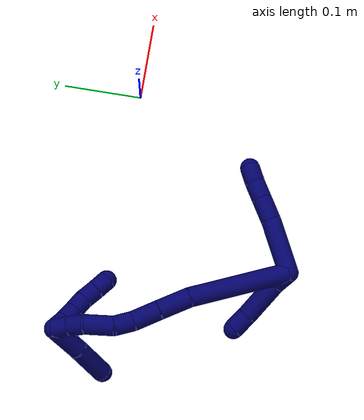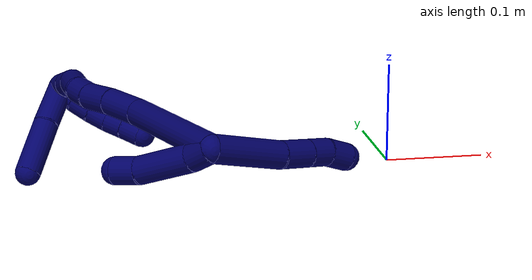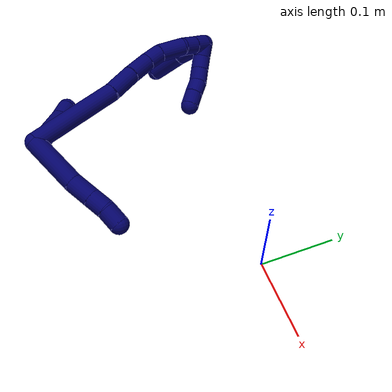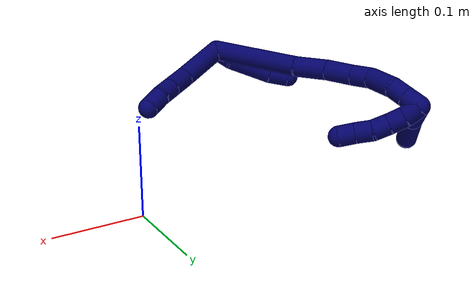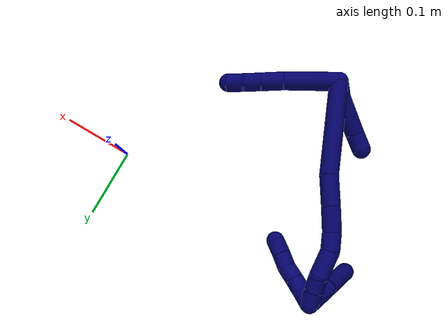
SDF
<sdf version="1.7">
 <world name="default">
  <model name="7">
   <static>0</static>
   <link name="7">
    <collision name="collision-cylinder-e_1_2_8">
     <pose>0.033415 0.007607 0.011159 -0.598351 1.1867 -0.410178</pose>
     <geometry><cylinder><radius>0.0125</radius><length>0.072082</length></cylinder></geometry>
     <surface>
      <friction><ode><mu>1.16</mu><mu2>1.16</mu2><slip1>0</slip1><slip2>0</slip2></ode></friction>
      <contact><ode><kp>1e+06</kp><kd>1</kd><max_vel>0</max_vel><min_depth>0.001</min_depth></ode></contact>
     </surface>
    </collision>
    <visual name="visual-cylinder-e_1_2_8">
     <pose>0.033415 0.007607 0.011159 -0.598351 1.1867 -0.410178</pose>
     <geometry><cylinder><radius>0.0125</radius><length>0.072082</length></cylinder></geometry>
     <material><ambient>0.003922 0 0.403922 1</ambient></material>
    </visual>
    <collision name="collision-cylinder-e_2_8_9">
     <pose>0.08112 0.01684 0.028307 -0.264938 1.16108 -0.174365</pose>
     <geometry><cylinder><radius>0.0125</radius><length>0.031157</length></cylinder></geometry>
     <surface>
      <friction><ode><mu>1.16</mu><mu2>1.16</mu2><slip1>0</slip1><slip2>0</slip2></ode></friction>
      <contact><ode><kp>1e+06</kp><kd>1</kd><max_vel>0</max_vel><min_depth>0.001</min_depth></ode></contact>
     </surface>
    </collision>
    <visual name="visual-cylinder-e_2_8_9">
     <pose>0.08112 0.01684 0.028307 -0.264938 1.16108 -0.174365</pose>
     <geometry><cylinder><radius>0.0125</radius><length>0.031157</length></cylinder></geometry>
     <material><ambient>0.003922 0 0.403922 1</ambient></material>
    </visual>
    <collision name="collision-cylinder-e_3_9_10">
     <pose>0.105939 0.019627 0.038757 -0.254984 1.1582 -0.167248</pose>
     <geometry><cylinder><radius>0.0125</radius><length>0.02299</length></cylinder></geometry>
     <surface>
      <friction><ode><mu>1.16</mu><mu2>1.16</mu2><slip1>0</slip1><slip2>0</slip2></ode></friction>
      <contact><ode><kp>1e+06</kp><kd>1</kd><max_vel>0</max_vel><min_depth>0.001</min_depth></ode></contact>
     </surface>
    </collision>
    <visual name="visual-cylinder-e_3_9_10">
     <pose>0.105939 0.019627 0.038757 -0.254984 1.1582 -0.167248</pose>
     <geometry><cylinder><radius>0.0125</radius><length>0.02299</length></cylinder></geometry>
     <material><ambient>0.003922 0 0.403922 1</ambient></material>
    </visual>
    <collision name="collision-cylinder-e_4_10_6">
     <pose>0.127131 0.024572 0.046862 -0.803951 1.11303 -0.517103</pose>
     <geometry><cylinder><radius>0.0125</radius><length>0.023771</length></cylinder></geometry>
     <surface>
      <friction><ode><mu>1.16</mu><mu2>1.16</mu2><slip1>0</slip1><slip2>0</slip2></ode></friction>
      <contact><ode><kp>1e+06</kp><kd>1</kd><max_vel>0</max_vel><min_depth>0.001</min_depth></ode></contact>
     </surface>
    </collision>
    <visual name="visual-cylinder-e_4_10_6">
     <pose>0.127131 0.024572 0.046862 -0.803951 1.11303 -0.517103</pose>
     <geometry><cylinder><radius>0.0125</radius><length>0.023771</length></cylinder></geometry>
     <material><ambient>0.003922 0 0.403922 1</ambient></material>
    </visual>
    <collision name="collision-cylinder-e_1_2_11">
     <pose>-0.005965 0.004788 0.008327 -0.521816 -0.555715 0.152019</pose>
     <geometry><cylinder><radius>0.0125</radius><length>0.022615</length></cylinder></geometry>
     <surface>
      <friction><ode><mu>1.16</mu><mu2>1.16</mu2><slip1>0</slip1><slip2>0</slip2></ode></friction>
      <contact><ode><kp>1e+06</kp><kd>1</kd><max_vel>0</max_vel><min_depth>0.001</min_depth></ode></contact>
     </surface>
    </collision>
    <visual name="visual-cylinder-e_1_2_11">
     <pose>-0.005965 0.004788 0.008327 -0.521816 -0.555715 0.152019</pose>
     <geometry><cylinder><radius>0.0125</radius><length>0.022615</length></cylinder></geometry>
     <material><ambient>0.003922 0 0.403922 1</ambient></material>
    </visual>
    <collision name="collision-cylinder-e_2_11_12">
     <pose>-0.030478 0.016758 0.034325 -0.386048 -0.771391 0.158392</pose>
     <geometry><cylinder><radius>0.0125</radius><length>0.05321</length></cylinder></geometry>
     <surface>
      <friction><ode><mu>1.16</mu><mu2>1.16</mu2><slip1>0</slip1><slip2>0</slip2></ode></friction>
      <contact><ode><kp>1e+06</kp><kd>1</kd><max_vel>0</max_vel><min_depth>0.001</min_depth></ode></contact>
     </surface>
    </collision>
    <visual name="visual-cylinder-e_2_11_12">
     <pose>-0.030478 0.016758 0.034325 -0.386048 -0.771391 0.158392</pose>
     <geometry><cylinder><radius>0.0125</radius><length>0.05321</length></cylinder></geometry>
     <material><ambient>0.003922 0 0.403922 1</ambient></material>
    </visual>
    <collision name="collision-cylinder-e_3_12_5">
     <pose>-0.057588 0.024954 0.060467 -0.119158 -0.787272 0.049536</pose>
     <geometry><cylinder><radius>0.0125</radius><length>0.024175</length></cylinder></geometry>
     <surface>
      <friction><ode><mu>1.16</mu><mu2>1.16</mu2><slip1>0</slip1><slip2>0</slip2></ode></friction>
      <contact><ode><kp>1e+06</kp><kd>1</kd><max_vel>0</max_vel><min_depth>0.001</min_depth></ode></contact>
     </surface>
    </collision>
    <visual name="visual-cylinder-e_3_12_5">
     <pose>-0.057588 0.024954 0.060467 -0.119158 -0.787272 0.049536</pose>
     <geometry><cylinder><radius>0.0125</radius><length>0.024175</length></cylinder></geometry>
     <material><ambient>0.003922 0 0.403922 1</ambient></material>
    </visual>
    <collision name="collision-cylinder-e_1_2_13">
     <pose>-0.016202 -0.007099 0.059585 0.118581 -0.263716 -0.015745</pose>
     <geometry><cylinder><radius>0.0125</radius><length>0.124311</length></cylinder></geometry>
     <surface>
      <friction><ode><mu>1.16</mu><mu2>1.16</mu2><slip1>0</slip1><slip2>0</slip2></ode></friction>
      <contact><ode><kp>1e+06</kp><kd>1</kd><max_vel>0</max_vel><min_depth>0.001</min_depth></ode></contact>
     </surface>
    </collision>
    <visual name="visual-cylinder-e_1_2_13">
     <pose>-0.016202 -0.007099 0.059585 0.118581 -0.263716 -0.015745</pose>
     <geometry><cylinder><radius>0.0125</radius><length>0.124311</length></cylinder></geometry>
     <material><ambient>0.003922 0 0.403922 1</ambient></material>
    </visual>
    <collision name="collision-cylinder-e_2_13_14">
     <pose>-0.040672 -0.01694 0.137488 0.148567 -0.419833 -0.031709</pose>
     <geometry><cylinder><radius>0.0125</radius><length>0.040565</length></cylinder></geometry>
     <surface>
      <friction><ode><mu>1.16</mu><mu2>1.16</mu2><slip1>0</slip1><slip2>0</slip2></ode></friction>
      <contact><ode><kp>1e+06</kp><kd>1</kd><max_vel>0</max_vel><min_depth>0.001</min_depth></ode></contact>
     </surface>
    </collision>
    <visual name="visual-cylinder-e_2_13_14">
     <pose>-0.040672 -0.01694 0.137488 0.148567 -0.419833 -0.031709</pose>
     <geometry><cylinder><radius>0.0125</radius><length>0.040565</length></cylinder></geometry>
     <material><ambient>0.003922 0 0.403922 1</ambient></material>
    </visual>
    <collision name="collision-cylinder-e_3_14_15">
     <pose>-0.055817 -0.020544 0.171273 0.055708 -0.417856 -0.011814</pose>
     <geometry><cylinder><radius>0.0125</radius><length>0.033899</length></cylinder></geometry>
     <surface>
      <friction><ode><mu>1.16</mu><mu2>1.16</mu2><slip1>0</slip1><slip2>0</slip2></ode></friction>
      <contact><ode><kp>1e+06</kp><kd>1</kd><max_vel>0</max_vel><min_depth>0.001</min_depth></ode></contact>
     </surface>
    </collision>
    <visual name="visual-cylinder-e_3_14_15">
     <pose>-0.055817 -0.020544 0.171273 0.055708 -0.417856 -0.011814</pose>
     <geometry><cylinder><radius>0.0125</radius><length>0.033899</length></cylinder></geometry>
     <material><ambient>0.003922 0 0.403922 1</ambient></material>
    </visual>
    <collision name="collision-cylinder-e_4_15_16">
     <pose>-0.065981 -0.023202 0.198296 0.154149 -0.273854 -0.021281</pose>
     <geometry><cylinder><radius>0.0125</radius><length>0.024295</length></cylinder></geometry>
     <surface>
      <friction><ode><mu>1.16</mu><mu2>1.16</mu2><slip1>0</slip1><slip2>0</slip2></ode></friction>
      <contact><ode><kp>1e+06</kp><kd>1</kd><max_vel>0</max_vel><min_depth>0.001</min_depth></ode></contact>
     </surface>
    </collision>
    <visual name="visual-cylinder-e_4_15_16">
     <pose>-0.065981 -0.023202 0.198296 0.154149 -0.273854 -0.021281</pose>
     <geometry><cylinder><radius>0.0125</radius><length>0.024295</length></cylinder></geometry>
     <material><ambient>0.003922 0 0.403922 1</ambient></material>
    </visual>
    <collision name="collision-cylinder-e_5_16_17">
     <pose>-0.068468 -0.026158 0.228107 0.063466 0.043612 0.001385</pose>
     <geometry><cylinder><radius>0.0125</radius><length>0.036617</length></cylinder></geometry>
     <surface>
      <friction><ode><mu>1.16</mu><mu2>1.16</mu2><slip1>0</slip1><slip2>0</slip2></ode></friction>
      <contact><ode><kp>1e+06</kp><kd>1</kd><max_vel>0</max_vel><min_depth>0.001</min_depth></ode></contact>
     </surface>
    </collision>
    <visual name="visual-cylinder-e_5_16_17">
     <pose>-0.068468 -0.026158 0.228107 0.063466 0.043612 0.001385</pose>
     <geometry><cylinder><radius>0.0125</radius><length>0.036617</length></cylinder></geometry>
     <material><ambient>0.003922 0 0.403922 1</ambient></material>
    </visual>
    <collision name="collision-cylinder-e_6_17_18">
     <pose>-0.068643 -0.02505 0.256145 -0.227778 -0.096629 0.011061</pose>
     <geometry><cylinder><radius>0.0125</radius><length>0.02018</length></cylinder></geometry>
     <surface>
      <friction><ode><mu>1.16</mu><mu2>1.16</mu2><slip1>0</slip1><slip2>0</slip2></ode></friction>
      <contact><ode><kp>1e+06</kp><kd>1</kd><max_vel>0</max_vel><min_depth>0.001</min_depth></ode></contact>
     </surface>
    </collision>
    <visual name="visual-cylinder-e_6_17_18">
     <pose>-0.068643 -0.02505 0.256145 -0.227778 -0.096629 0.011061</pose>
     <geometry><cylinder><radius>0.0125</radius><length>0.02018</length></cylinder></geometry>
     <material><ambient>0.003922 0 0.403922 1</ambient></material>
    </visual>
    <collision name="collision-cylinder-e_7_18_1">
     <pose>-0.070838 -0.020516 0.275659 -0.228785 -0.121633 0.013992</pose>
     <geometry><cylinder><radius>0.0125</radius><length>0.020131</length></cylinder></geometry>
     <surface>
      <friction><ode><mu>1.16</mu><mu2>1.16</mu2><slip1>0</slip1><slip2>0</slip2></ode></friction>
      <contact><ode><kp>1e+06</kp><kd>1</kd><max_vel>0</max_vel><min_depth>0.001</min_depth></ode></contact>
     </surface>
    </collision>
    <visual name="visual-cylinder-e_7_18_1">
     <pose>-0.070838 -0.020516 0.275659 -0.228785 -0.121633 0.013992</pose>
     <geometry><cylinder><radius>0.0125</radius><length>0.020131</length></cylinder></geometry>
     <material><ambient>0.003922 0 0.403922 1</ambient></material>
    </visual>
    <collision name="collision-cylinder-e_1_1_19">
     <pose>-0.082765 -0.002083 0.273029 -2.22361 -0.484282 0.926939</pose>
     <geometry><cylinder><radius>0.0125</radius><length>0.045991</length></cylinder></geometry>
     <surface>
      <friction><ode><mu>1.16</mu><mu2>1.16</mu2><slip1>0</slip1><slip2>0</slip2></ode></friction>
      <contact><ode><kp>1e+06</kp><kd>1</kd><max_vel>0</max_vel><min_depth>0.001</min_depth></ode></contact>
     </surface>
    </collision>
    <visual name="visual-cylinder-e_1_1_19">
     <pose>-0.082765 -0.002083 0.273029 -2.22361 -0.484282 0.926939</pose>
     <geometry><cylinder><radius>0.0125</radius><length>0.045991</length></cylinder></geometry>
     <material><ambient>0.003922 0 0.403922 1</ambient></material>
    </visual>
    <collision name="collision-cylinder-e_2_19_4">
     <pose>-0.105351 0.035135 0.248628 -2.09027 -0.455525 0.760248</pose>
     <geometry><cylinder><radius>0.0125</radius><length>0.054009</length></cylinder></geometry>
     <surface>
      <friction><ode><mu>1.16</mu><mu2>1.16</mu2><slip1>0</slip1><slip2>0</slip2></ode></friction>
      <contact><ode><kp>1e+06</kp><kd>1</kd><max_vel>0</max_vel><min_depth>0.001</min_depth></ode></contact>
     </surface>
    </collision>
    <visual name="visual-cylinder-e_2_19_4">
     <pose>-0.105351 0.035135 0.248628 -2.09027 -0.455525 0.760248</pose>
     <geometry><cylinder><radius>0.0125</radius><length>0.054009</length></cylinder></geometry>
     <material><ambient>0.003922 0 0.403922 1</ambient></material>
    </visual>
    <collision name="collision-cylinder-e_1_1_20">
     <pose>-0.066247 -0.011414 0.280976 -2.14419 0.62017 -1.0636</pose>
     <geometry><cylinder><radius>0.0125</radius><length>0.02</length></cylinder></geometry>
     <surface>
      <friction><ode><mu>1.16</mu><mu2>1.16</mu2><slip1>0</slip1><slip2>0</slip2></ode></friction>
      <contact><ode><kp>1e+06</kp><kd>1</kd><max_vel>0</max_vel><min_depth>0.001</min_depth></ode></contact>
     </surface>
    </collision>
    <visual name="visual-cylinder-e_1_1_20">
     <pose>-0.066247 -0.011414 0.280976 -2.14419 0.62017 -1.0636</pose>
     <geometry><cylinder><radius>0.0125</radius><length>0.02</length></cylinder></geometry>
     <material><ambient>0.003922 0 0.403922 1</ambient></material>
    </visual>
    <collision name="collision-cylinder-e_2_20_21">
     <pose>-0.05343 0.000468 0.271516 -2.35615 0.776232 -1.55772</pose>
     <geometry><cylinder><radius>0.0125</radius><length>0.02</length></cylinder></geometry>
     <surface>
      <friction><ode><mu>1.16</mu><mu2>1.16</mu2><slip1>0</slip1><slip2>0</slip2></ode></friction>
      <contact><ode><kp>1e+06</kp><kd>1</kd><max_vel>0</max_vel><min_depth>0.001</min_depth></ode></contact>
     </surface>
    </collision>
    <visual name="visual-cylinder-e_2_20_21">
     <pose>-0.05343 0.000468 0.271516 -2.35615 0.776232 -1.55772</pose>
     <geometry><cylinder><radius>0.0125</radius><length>0.02</length></cylinder></geometry>
     <material><ambient>0.003922 0 0.403922 1</ambient></material>
    </visual>
    <collision name="collision-cylinder-e_3_21_22">
     <pose>-0.039027 0.009916 0.26138 -2.4286 0.832612 -1.74161</pose>
     <geometry><cylinder><radius>0.0125</radius><length>0.02</length></cylinder></geometry>
     <surface>
      <friction><ode><mu>1.16</mu><mu2>1.16</mu2><slip1>0</slip1><slip2>0</slip2></ode></friction>
      <contact><ode><kp>1e+06</kp><kd>1</kd><max_vel>0</max_vel><min_depth>0.001</min_depth></ode></contact>
     </surface>
    </collision>
    <visual name="visual-cylinder-e_3_21_22">
     <pose>-0.039027 0.009916 0.26138 -2.4286 0.832612 -1.74161</pose>
     <geometry><cylinder><radius>0.0125</radius><length>0.02</length></cylinder></geometry>
     <material><ambient>0.003922 0 0.403922 1</ambient></material>
    </visual>
    <collision name="collision-cylinder-e_4_22_23">
     <pose>-0.025088 0.017211 0.249302 -2.7491 0.713152 -2.16109</pose>
     <geometry><cylinder><radius>0.0125</radius><length>0.02</length></cylinder></geometry>
     <surface>
      <friction><ode><mu>1.16</mu><mu2>1.16</mu2><slip1>0</slip1><slip2>0</slip2></ode></friction>
      <contact><ode><kp>1e+06</kp><kd>1</kd><max_vel>0</max_vel><min_depth>0.001</min_depth></ode></contact>
     </surface>
    </collision>
    <visual name="visual-cylinder-e_4_22_23">
     <pose>-0.025088 0.017211 0.249302 -2.7491 0.713152 -2.16109</pose>
     <geometry><cylinder><radius>0.0125</radius><length>0.02</length></cylinder></geometry>
     <material><ambient>0.003922 0 0.403922 1</ambient></material>
    </visual>
    <collision name="collision-cylinder-e_5_23_3">
     <pose>-0.011762 0.023381 0.235738 -2.67915 0.745513 -2.05772</pose>
     <geometry><cylinder><radius>0.0125</radius><length>0.02</length></cylinder></geometry>
     <surface>
      <friction><ode><mu>1.16</mu><mu2>1.16</mu2><slip1>0</slip1><slip2>0</slip2></ode></friction>
      <contact><ode><kp>1e+06</kp><kd>1</kd><max_vel>0</max_vel><min_depth>0.001</min_depth></ode></contact>
     </surface>
    </collision>
    <visual name="visual-cylinder-e_5_23_3">
     <pose>-0.011762 0.023381 0.235738 -2.67915 0.745513 -2.05772</pose>
     <geometry><cylinder><radius>0.0125</radius><length>0.02</length></cylinder></geometry>
     <material><ambient>0.003922 0 0.403922 1</ambient></material>
    </visual>
    <collision name="collision-sphere-3">
     <pose>-0.004978 0.026659 0.229163 0 -0 0</pose>
     <geometry><sphere><radius>0.0125</radius></sphere></geometry>
     <surface>
      <friction><ode><mu>1.16</mu><mu2>1.16</mu2><slip1>0</slip1><slip2>0</slip2></ode></friction>
      <contact><ode><kp>1e+06</kp><kd>1</kd><max_vel>0</max_vel><min_depth>0.001</min_depth></ode></contact>
     </surface>
    </collision>
    <visual name="visual-sphere-3">
     <pose>-0.004978 0.026659 0.229163 0 -0 0</pose>
     <geometry><sphere><radius>0.0125</radius></sphere></geometry>
     <material><ambient>0.003922 0 0.403922 1</ambient></material>
    </visual>
    <collision name="collision-sphere-23">
     <pose>-0.018545 0.020104 0.242314 0 -0 0</pose>
     <geometry><sphere><radius>0.0125</radius></sphere></geometry>
     <surface>
      <friction><ode><mu>1.16</mu><mu2>1.16</mu2><slip1>0</slip1><slip2>0</slip2></ode></friction>
      <contact><ode><kp>1e+06</kp><kd>1</kd><max_vel>0</max_vel><min_depth>0.001</min_depth></ode></contact>
     </surface>
    </collision>
    <visual name="visual-sphere-23">
     <pose>-0.018545 0.020104 0.242314 0 -0 0</pose>
     <geometry><sphere><radius>0.0125</radius></sphere></geometry>
     <material><ambient>0.003922 0 0.403922 1</ambient></material>
    </visual>
    <collision name="collision-sphere-22">
     <pose>-0.03163 0.014318 0.25629 0 -0 0</pose>
     <geometry><sphere><radius>0.0125</radius></sphere></geometry>
     <surface>
      <friction><ode><mu>1.16</mu><mu2>1.16</mu2><slip1>0</slip1><slip2>0</slip2></ode></friction>
      <contact><ode><kp>1e+06</kp><kd>1</kd><max_vel>0</max_vel><min_depth>0.001</min_depth></ode></contact>
     </surface>
    </collision>
    <visual name="visual-sphere-22">
     <pose>-0.03163 0.014318 0.25629 0 -0 0</pose>
     <geometry><sphere><radius>0.0125</radius></sphere></geometry>
     <material><ambient>0.003922 0 0.403922 1</ambient></material>
    </visual>
    <collision name="collision-sphere-21">
     <pose>-0.046424 0.005514 0.26647 0 -0 0</pose>
     <geometry><sphere><radius>0.0125</radius></sphere></geometry>
     <surface>
      <friction><ode><mu>1.16</mu><mu2>1.16</mu2><slip1>0</slip1><slip2>0</slip2></ode></friction>
      <contact><ode><kp>1e+06</kp><kd>1</kd><max_vel>0</max_vel><min_depth>0.001</min_depth></ode></contact>
     </surface>
    </collision>
    <visual name="visual-sphere-21">
     <pose>-0.046424 0.005514 0.26647 0 -0 0</pose>
     <geometry><sphere><radius>0.0125</radius></sphere></geometry>
     <material><ambient>0.003922 0 0.403922 1</ambient></material>
    </visual>
    <collision name="collision-sphere-20">
     <pose>-0.060436 -0.004577 0.276561 0 -0 0</pose>
     <geometry><sphere><radius>0.0125</radius></sphere></geometry>
     <surface>
      <friction><ode><mu>1.16</mu><mu2>1.16</mu2><slip1>0</slip1><slip2>0</slip2></ode></friction>
      <contact><ode><kp>1e+06</kp><kd>1</kd><max_vel>0</max_vel><min_depth>0.001</min_depth></ode></contact>
     </surface>
    </collision>
    <visual name="visual-sphere-20">
     <pose>-0.060436 -0.004577 0.276561 0 -0 0</pose>
     <geometry><sphere><radius>0.0125</radius></sphere></geometry>
     <material><ambient>0.003922 0 0.403922 1</ambient></material>
    </visual>
    <collision name="collision-sphere-4">
     <pose>-0.117232 0.056187 0.23659 0 -0 0</pose>
     <geometry><sphere><radius>0.0125</radius></sphere></geometry>
     <surface>
      <friction><ode><mu>1.16</mu><mu2>1.16</mu2><slip1>0</slip1><slip2>0</slip2></ode></friction>
      <contact><ode><kp>1e+06</kp><kd>1</kd><max_vel>0</max_vel><min_depth>0.001</min_depth></ode></contact>
     </surface>
    </collision>
    <visual name="visual-sphere-4">
     <pose>-0.117232 0.056187 0.23659 0 -0 0</pose>
     <geometry><sphere><radius>0.0125</radius></sphere></geometry>
     <material><ambient>0.003922 0 0.403922 1</ambient></material>
    </visual>
    <collision name="collision-sphere-11">
     <pose>-0.01193 0.009576 0.016655 0 -0 0</pose>
     <geometry><sphere><radius>0.0125</radius></sphere></geometry>
     <surface>
      <friction><ode><mu>1.16</mu><mu2>1.16</mu2><slip1>0</slip1><slip2>0</slip2></ode></friction>
      <contact><ode><kp>1e+06</kp><kd>1</kd><max_vel>0</max_vel><min_depth>0.001</min_depth></ode></contact>
     </surface>
    </collision>
    <visual name="visual-sphere-11">
     <pose>-0.01193 0.009576 0.016655 0 -0 0</pose>
     <geometry><sphere><radius>0.0125</radius></sphere></geometry>
     <material><ambient>0.003922 0 0.403922 1</ambient></material>
    </visual>
    <collision name="collision-sphere-6">
     <pose>0.137793 0.028355 0.050506 0 -0 0</pose>
     <geometry><sphere><radius>0.0125</radius></sphere></geometry>
     <surface>
      <friction><ode><mu>1.16</mu><mu2>1.16</mu2><slip1>0</slip1><slip2>0</slip2></ode></friction>
      <contact><ode><kp>1e+06</kp><kd>1</kd><max_vel>0</max_vel><min_depth>0.001</min_depth></ode></contact>
     </surface>
    </collision>
    <visual name="visual-sphere-6">
     <pose>0.137793 0.028355 0.050506 0 -0 0</pose>
     <geometry><sphere><radius>0.0125</radius></sphere></geometry>
     <material><ambient>0.003922 0 0.403922 1</ambient></material>
    </visual>
    <collision name="collision-sphere-10">
     <pose>0.116469 0.02079 0.043217 0 -0 0</pose>
     <geometry><sphere><radius>0.0125</radius></sphere></geometry>
     <surface>
      <friction><ode><mu>1.16</mu><mu2>1.16</mu2><slip1>0</slip1><slip2>0</slip2></ode></friction>
      <contact><ode><kp>1e+06</kp><kd>1</kd><max_vel>0</max_vel><min_depth>0.001</min_depth></ode></contact>
     </surface>
    </collision>
    <visual name="visual-sphere-10">
     <pose>0.116469 0.02079 0.043217 0 -0 0</pose>
     <geometry><sphere><radius>0.0125</radius></sphere></geometry>
     <material><ambient>0.003922 0 0.403922 1</ambient></material>
    </visual>
    <collision name="collision-sphere-9">
     <pose>0.095409 0.018465 0.034296 0 -0 0</pose>
     <geometry><sphere><radius>0.0125</radius></sphere></geometry>
     <surface>
      <friction><ode><mu>1.16</mu><mu2>1.16</mu2><slip1>0</slip1><slip2>0</slip2></ode></friction>
      <contact><ode><kp>1e+06</kp><kd>1</kd><max_vel>0</max_vel><min_depth>0.001</min_depth></ode></contact>
     </surface>
    </collision>
    <visual name="visual-sphere-9">
     <pose>0.095409 0.018465 0.034296 0 -0 0</pose>
     <geometry><sphere><radius>0.0125</radius></sphere></geometry>
     <material><ambient>0.003922 0 0.403922 1</ambient></material>
    </visual>
    <collision name="collision-sphere-2">
     <geometry><sphere><radius>0.0125</radius></sphere></geometry>
     <surface>
      <friction><ode><mu>1.16</mu><mu2>1.16</mu2><slip1>0</slip1><slip2>0</slip2></ode></friction>
      <contact><ode><kp>1e+06</kp><kd>1</kd><max_vel>0</max_vel><min_depth>0.001</min_depth></ode></contact>
     </surface>
    </collision>
    <visual name="visual-sphere-2">
     <geometry><sphere><radius>0.0125</radius></sphere></geometry>
     <material><ambient>0.003922 0 0.403922 1</ambient></material>
    </visual>
    <collision name="collision-sphere-19">
     <pose>-0.093471 0.014083 0.260667 0 -0 0</pose>
     <geometry><sphere><radius>0.0125</radius></sphere></geometry>
     <surface>
      <friction><ode><mu>1.16</mu><mu2>1.16</mu2><slip1>0</slip1><slip2>0</slip2></ode></friction>
      <contact><ode><kp>1e+06</kp><kd>1</kd><max_vel>0</max_vel><min_depth>0.001</min_depth></ode></contact>
     </surface>
    </collision>
    <visual name="visual-sphere-19">
     <pose>-0.093471 0.014083 0.260667 0 -0 0</pose>
     <geometry><sphere><radius>0.0125</radius></sphere></geometry>
     <material><ambient>0.003922 0 0.403922 1</ambient></material>
    </visual>
    <collision name="collision-sphere-8">
     <pose>0.06683 0.015215 0.022318 0 -0 0</pose>
     <geometry><sphere><radius>0.0125</radius></sphere></geometry>
     <surface>
      <friction><ode><mu>1.16</mu><mu2>1.16</mu2><slip1>0</slip1><slip2>0</slip2></ode></friction>
      <contact><ode><kp>1e+06</kp><kd>1</kd><max_vel>0</max_vel><min_depth>0.001</min_depth></ode></contact>
     </surface>
    </collision>
    <visual name="visual-sphere-8">
     <pose>0.06683 0.015215 0.022318 0 -0 0</pose>
     <geometry><sphere><radius>0.0125</radius></sphere></geometry>
     <material><ambient>0.003922 0 0.403922 1</ambient></material>
    </visual>
    <collision name="collision-sphere-12">
     <pose>-0.049025 0.02394 0.051996 0 -0 0</pose>
     <geometry><sphere><radius>0.0125</radius></sphere></geometry>
     <surface>
      <friction><ode><mu>1.16</mu><mu2>1.16</mu2><slip1>0</slip1><slip2>0</slip2></ode></friction>
      <contact><ode><kp>1e+06</kp><kd>1</kd><max_vel>0</max_vel><min_depth>0.001</min_depth></ode></contact>
     </surface>
    </collision>
    <visual name="visual-sphere-12">
     <pose>-0.049025 0.02394 0.051996 0 -0 0</pose>
     <geometry><sphere><radius>0.0125</radius></sphere></geometry>
     <material><ambient>0.003922 0 0.403922 1</ambient></material>
    </visual>
    <collision name="collision-sphere-5">
     <pose>-0.066151 0.025969 0.068937 0 -0 0</pose>
     <geometry><sphere><radius>0.0125</radius></sphere></geometry>
     <surface>
      <friction><ode><mu>1.16</mu><mu2>1.16</mu2><slip1>0</slip1><slip2>0</slip2></ode></friction>
      <contact><ode><kp>1e+06</kp><kd>1</kd><max_vel>0</max_vel><min_depth>0.001</min_depth></ode></contact>
     </surface>
    </collision>
    <visual name="visual-sphere-5">
     <pose>-0.066151 0.025969 0.068937 0 -0 0</pose>
     <geometry><sphere><radius>0.0125</radius></sphere></geometry>
     <material><ambient>0.003922 0 0.403922 1</ambient></material>
    </visual>
    <collision name="collision-sphere-13">
     <pose>-0.032404 -0.014198 0.119171 0 -0 0</pose>
     <geometry><sphere><radius>0.0125</radius></sphere></geometry>
     <surface>
      <friction><ode><mu>1.16</mu><mu2>1.16</mu2><slip1>0</slip1><slip2>0</slip2></ode></friction>
      <contact><ode><kp>1e+06</kp><kd>1</kd><max_vel>0</max_vel><min_depth>0.001</min_depth></ode></contact>
     </surface>
    </collision>
    <visual name="visual-sphere-13">
     <pose>-0.032404 -0.014198 0.119171 0 -0 0</pose>
     <geometry><sphere><radius>0.0125</radius></sphere></geometry>
     <material><ambient>0.003922 0 0.403922 1</ambient></material>
    </visual>
    <collision name="collision-sphere-14">
     <pose>-0.048939 -0.019681 0.155805 0 -0 0</pose>
     <geometry><sphere><radius>0.0125</radius></sphere></geometry>
     <surface>
      <friction><ode><mu>1.16</mu><mu2>1.16</mu2><slip1>0</slip1><slip2>0</slip2></ode></friction>
      <contact><ode><kp>1e+06</kp><kd>1</kd><max_vel>0</max_vel><min_depth>0.001</min_depth></ode></contact>
     </surface>
    </collision>
    <visual name="visual-sphere-14">
     <pose>-0.048939 -0.019681 0.155805 0 -0 0</pose>
     <geometry><sphere><radius>0.0125</radius></sphere></geometry>
     <material><ambient>0.003922 0 0.403922 1</ambient></material>
    </visual>
    <collision name="collision-sphere-15">
     <pose>-0.062695 -0.021406 0.18674 0 -0 0</pose>
     <geometry><sphere><radius>0.0125</radius></sphere></geometry>
     <surface>
      <friction><ode><mu>1.16</mu><mu2>1.16</mu2><slip1>0</slip1><slip2>0</slip2></ode></friction>
      <contact><ode><kp>1e+06</kp><kd>1</kd><max_vel>0</max_vel><min_depth>0.001</min_depth></ode></contact>
     </surface>
    </collision>
    <visual name="visual-sphere-15">
     <pose>-0.062695 -0.021406 0.18674 0 -0 0</pose>
     <geometry><sphere><radius>0.0125</radius></sphere></geometry>
     <material><ambient>0.003922 0 0.403922 1</ambient></material>
    </visual>
    <collision name="collision-sphere-16">
     <pose>-0.069266 -0.024997 0.209852 0 -0 0</pose>
     <geometry><sphere><radius>0.0125</radius></sphere></geometry>
     <surface>
      <friction><ode><mu>1.16</mu><mu2>1.16</mu2><slip1>0</slip1><slip2>0</slip2></ode></friction>
      <contact><ode><kp>1e+06</kp><kd>1</kd><max_vel>0</max_vel><min_depth>0.001</min_depth></ode></contact>
     </surface>
    </collision>
    <visual name="visual-sphere-16">
     <pose>-0.069266 -0.024997 0.209852 0 -0 0</pose>
     <geometry><sphere><radius>0.0125</radius></sphere></geometry>
     <material><ambient>0.003922 0 0.403922 1</ambient></material>
    </visual>
    <collision name="collision-sphere-17">
     <pose>-0.067669 -0.027318 0.246361 0 -0 0</pose>
     <geometry><sphere><radius>0.0125</radius></sphere></geometry>
     <surface>
      <friction><ode><mu>1.16</mu><mu2>1.16</mu2><slip1>0</slip1><slip2>0</slip2></ode></friction>
      <contact><ode><kp>1e+06</kp><kd>1</kd><max_vel>0</max_vel><min_depth>0.001</min_depth></ode></contact>
     </surface>
    </collision>
    <visual name="visual-sphere-17">
     <pose>-0.067669 -0.027318 0.246361 0 -0 0</pose>
     <geometry><sphere><radius>0.0125</radius></sphere></geometry>
     <material><ambient>0.003922 0 0.403922 1</ambient></material>
    </visual>
    <collision name="collision-sphere-18">
     <pose>-0.069616 -0.022782 0.265928 0 -0 0</pose>
     <geometry><sphere><radius>0.0125</radius></sphere></geometry>
     <surface>
      <friction><ode><mu>1.16</mu><mu2>1.16</mu2><slip1>0</slip1><slip2>0</slip2></ode></friction>
      <contact><ode><kp>1e+06</kp><kd>1</kd><max_vel>0</max_vel><min_depth>0.001</min_depth></ode></contact>
     </surface>
    </collision>
    <visual name="visual-sphere-18">
     <pose>-0.069616 -0.022782 0.265928 0 -0 0</pose>
     <geometry><sphere><radius>0.0125</radius></sphere></geometry>
     <material><ambient>0.003922 0 0.403922 1</ambient></material>
    </visual>
    <collision name="collision-sphere-1">
     <pose>-0.072059 -0.01825 0.28539 0 -0 0</pose>
     <geometry><sphere><radius>0.0125</radius></sphere></geometry>
     <surface>
      <friction><ode><mu>1.16</mu><mu2>1.16</mu2><slip1>0</slip1><slip2>0</slip2></ode></friction>
      <contact><ode><kp>1e+06</kp><kd>1</kd><max_vel>0</max_vel><min_depth>0.001</min_depth></ode></contact>
     </surface>
    </collision>
    <visual name="visual-sphere-1">
     <pose>-0.072059 -0.01825 0.28539 0 -0 0</pose>
     <geometry><sphere><radius>0.0125</radius></sphere></geometry>
     <material><ambient>0.003922 0 0.403922 1</ambient></material>
    </visual>
    <inertial>
     <pose>-0.024854 0.002131 0.135747 0 -0 0</pose>
     <mass>0.75</mass>
     <inertia><ixx>0.00023</ixx><ixy>0</ixy><ixz>0</ixz><iyy>0.000263</iyy><iyz>0</iyz><izz>3.7e-05</izz></inertia>
    </inertial>
   </link>
   <pose>-0.209326 -0.221297 0.09517 -1.69298 0.013936 0.148754</pose>
  </model>
 </world>
</sdf>
